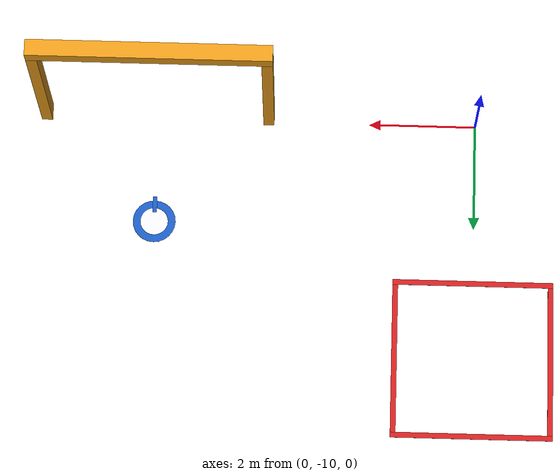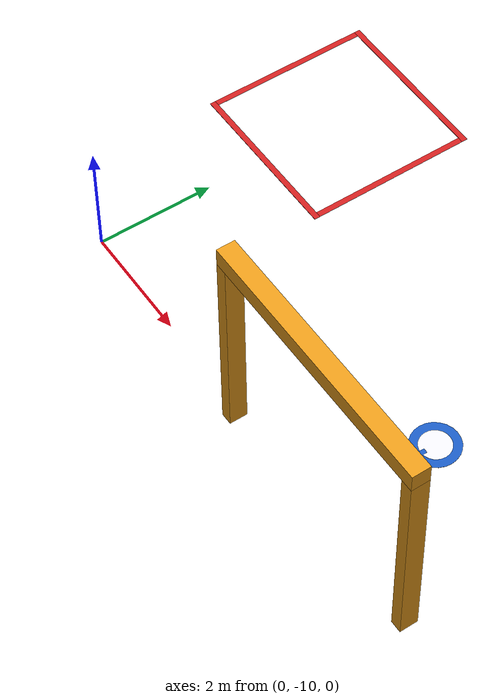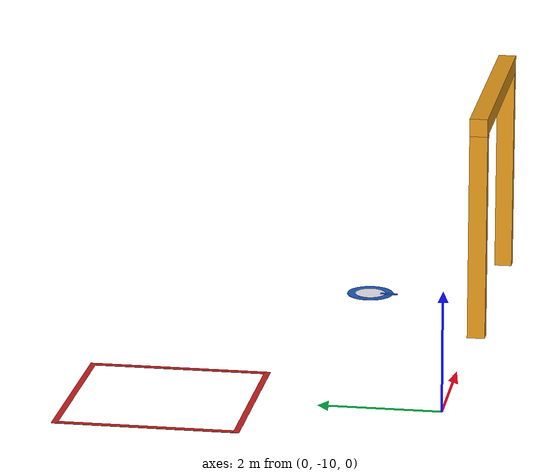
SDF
<sdf version="1.8">
 <world name="warehouse">
  <model name="DoorGap">
   <static>true</static>
   <pose>6.00 -10.10 0 0 0 0</pose>
   <link name="link">
    <collision name="post_west_collision">
     <pose>-2.100 0.000 1.750 0 0 0</pose>
     <geometry><box><size>0.200 0.300 3.500</size></box></geometry>
    </collision>
    <visual name="post_west_visual">
     <pose>-2.100 0.000 1.750 0 0 0</pose>
     <geometry><box><size>0.200 0.300 3.500</size></box></geometry>
     <material><ambient>0.90 0.60 0.10 1</ambient><diffuse>0.90 0.60 0.10 1</diffuse></material>
    </visual>
    <collision name="post_east_collision">
     <pose>2.100 0.000 1.750 0 0 0</pose>
     <geometry><box><size>0.200 0.300 3.500</size></box></geometry>
    </collision>
    <visual name="post_east_visual">
     <pose>2.100 0.000 1.750 0 0 0</pose>
     <geometry><box><size>0.200 0.300 3.500</size></box></geometry>
     <material><ambient>0.90 0.60 0.10 1</ambient><diffuse>0.90 0.60 0.10 1</diffuse></material>
    </visual>
    <collision name="lintel_collision">
     <pose>0.000 0.000 3.650 0 0 0</pose>
     <geometry><box><size>4.400 0.300 0.300</size></box></geometry>
    </collision>
    <visual name="lintel_visual">
     <pose>0.000 0.000 3.650 0 0 0</pose>
     <geometry><box><size>4.400 0.300 0.300</size></box></geometry>
     <material><ambient>0.90 0.60 0.10 1</ambient><diffuse>0.90 0.60 0.10 1</diffuse></material>
    </visual>
   </link>
  </model>
  <model name="SafetyZoneMarking">
   <static>true</static>
   <pose>0.000 -5.500 0 0 0 0</pose>
   <link name="link">
    <visual name="edge_north">
     <pose>0.000 1.450 0.003 0 0 0</pose>
     <geometry><box><size>3.00 0.10 0.006</size></box></geometry>
     <material><ambient>0.80 0.12 0.12 1</ambient><diffuse>0.80 0.12 0.12 1</diffuse></material>
    </visual>
    <visual name="edge_south">
     <pose>0.000 -1.450 0.003 0 0 0</pose>
     <geometry><box><size>3.00 0.10 0.006</size></box></geometry>
     <material><ambient>0.80 0.12 0.12 1</ambient><diffuse>0.80 0.12 0.12 1</diffuse></material>
    </visual>
    <visual name="edge_west">
     <pose>-1.450 0.000 0.003 0 0 0</pose>
     <geometry><box><size>0.10 2.80 0.006</size></box></geometry>
     <material><ambient>0.80 0.12 0.12 1</ambient><diffuse>0.80 0.12 0.12 1</diffuse></material>
    </visual>
    <visual name="edge_east">
     <pose>1.450 0.000 0.003 0 0 0</pose>
     <geometry><box><size>0.10 2.80 0.006</size></box></geometry>
     <material><ambient>0.80 0.12 0.12 1</ambient><diffuse>0.80 0.12 0.12 1</diffuse></material>
    </visual>
   </link>
  </model>
  <model name="StationS4Paint">
   <static>true</static>
   <pose>6.000 -8.000 0 0 0 0</pose>
   <link name="link">
    <visual name="disc">
     <pose>0 0 0.003 0 0 0</pose>
     <geometry><cylinder><radius>0.40</radius><length>0.006</length></cylinder></geometry>
     <material><ambient>0.10 0.35 0.75 1</ambient><diffuse>0.10 0.35 0.75 1</diffuse></material>
    </visual>
    <visual name="core">
     <pose>0 0 0.004 0 0 0</pose>
     <geometry><cylinder><radius>0.26</radius><length>0.006</length></cylinder></geometry>
     <material><ambient>0.92 0.92 0.95 1</ambient><diffuse>0.92 0.92 0.95 1</diffuse></material>
    </visual>
    <visual name="tick">
     <pose>0.000 -0.330 0.005 0 0 -1.570796</pose>
     <geometry><box><size>0.30 0.08 0.006</size></box></geometry>
     <material><ambient>0.10 0.35 0.75 1</ambient><diffuse>0.10 0.35 0.75 1</diffuse></material>
    </visual>
   </link>
  </model>
 </world>
</sdf>
